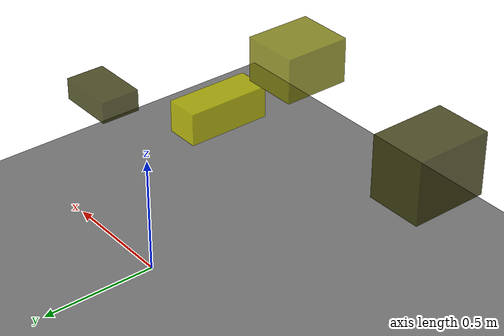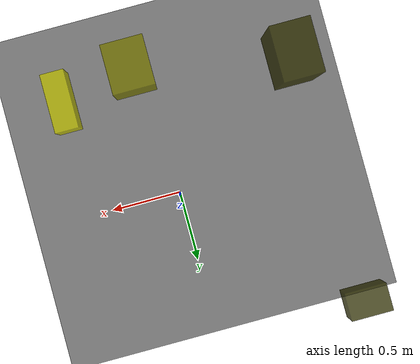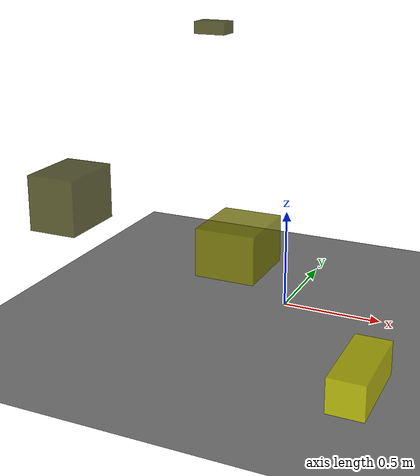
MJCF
<?xml version="1.0"?>
<mujoco model="obstacle_scene">
  <compiler angle="radian" coordinate="local"/>
  <option timestep="0.001" gravity="0 0 -9.81"/>

  <asset>
    <material name="obstacle_mat" rgba="0.8 0.8 0.0 0.8"/>
    <material name="ground_mat" rgba="0.5 0.5 0.5 1"/>
  </asset>

  <worldbody>
    <!-- Ground plane -->
    <geom name="ground" type="plane" size="3 3 0.1" material="ground_mat"/>

    <!-- Obstacles -->
    <body name="obstacle_0" pos="-0.847772 -0.638837 0.657241">
      <geom name="obs_0" type="box" size="0.119340 0.163573 0.132824" rgba="0.2 0.2 0.0 0.8"/>
    </body>
    <body name="obstacle_1" pos="0.089441 -0.817967 0.625445">
      <geom name="obs_1" type="box" size="0.126128 0.148761 0.100117" rgba="0.5 0.5 0.0 0.8"/>
    </body>
    <body name="obstacle_2" pos="0.623393 -0.816857 0.146741">
      <geom name="obs_2" type="box" size="0.081661 0.204642 0.078097" rgba="0.8 0.8 0.0 0.8"/>
    </body>
    <body name="obstacle_3" pos="-0.683443 0.604234 1.321183">
      <geom name="obs_3" type="box" size="0.093143 0.061801 0.034412" rgba="0.2 0.2 0.0 0.8"/>
    </body>
  </worldbody>
</mujoco>
